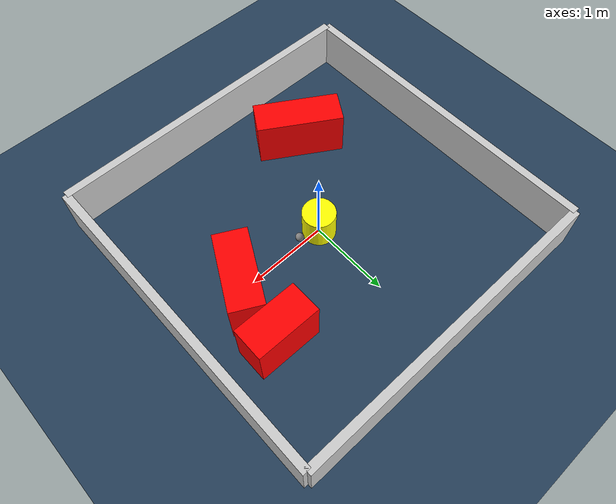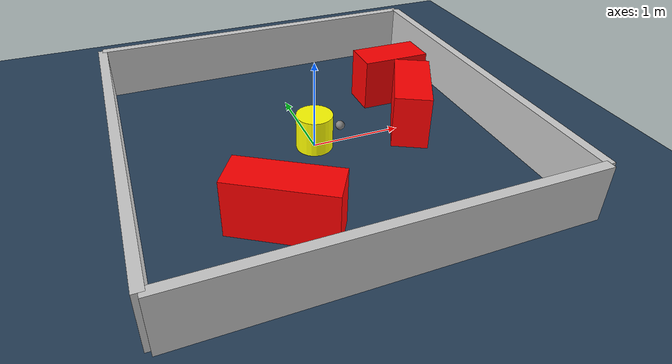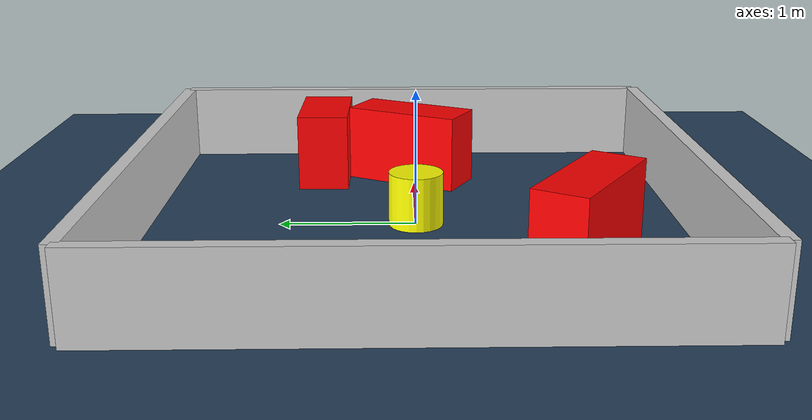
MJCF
<?xml version="1.0" ?>
<mujoco model="generated_environment">
  <option timestep="0.01" integrator="RK4" cone="elliptic"/>
  <default>
    <geom density="1"/>
  </default>
  <asset>
    <texture builtin="gradient" height="3072" rgb1="0.3 0.5 0.7" rgb2="0 0 0" type="skybox" width="512"/>
    <texture builtin="checker" height="300" mark="edge" markrgb="0.8 0.8 0.8" name="groundplane" rgb1="0.2 0.3 0.4" rgb2="0.1 0.2 0.3" type="2d" width="300"/>
    <material name="groundplane" reflectance="0.2" texrepeat="5 5" texture="groundplane" texuniform="true"/>
    <material name="robot" rgba="0.0 1.0 0.0 1"/>
  </asset>
  <worldbody>
    <light dir="0 0 -1" directional="true" pos="0 0 1.5"/>
    <geom condim="4" friction="1.0 0.005 0.001" material="groundplane" name="floor" size="0 0 0.05" type="plane"/>
    <body name="walls">
      <geom name="wall_1" condim="4" pos="-2.0 0.0 0.3" rgba="0.800000011920929 0.800000011920929 0.800000011920929 1.0" size="0.05 2.0 0.3" type="box"/>
      <geom name="wall_2" condim="4" pos="2.0 0.0 0.3" rgba="0.800000011920929 0.800000011920929 0.800000011920929 1.0" size="0.05 2.0 0.3" type="box"/>
      <geom name="wall_3" condim="4" pos="0.0 -2.0 0.3" rgba="0.800000011920929 0.800000011920929 0.800000011920929 1.0" size="2.0 0.05 0.3" type="box"/>
      <geom name="wall_4" condim="4" pos="0.0 2.0 0.3" rgba="0.800000011920929 0.800000011920929 0.800000011920929 1.0" size="2.0 0.05 0.3" type="box"/>
    </body>
    <body name="robot">
      <joint name="joint_x" type="slide" pos="0 0 0" axis="1 0 0"/>
      <joint name="joint_y" type="slide" pos="0 0 0" axis="0 1 0"/>
      <geom name="robot" type="sphere" pos="0.3 0.0 0.2" size="0.05" mass="5." friction="1.0 0.005 0.0001" condim="4" rgba="0.5 0.5 0.5 1.0"/>
      <site name="sensor_ball"/>
    </body>
    <body name="obstacle_movable_1">
      <geom name="obstacle_movable_1" condim="4" pos="0.0 0.0 0.2" euler="0 0 0.0" friction="1.0 0.005 0.001" rgba="1.0 1.0 0.0 1.0" size="0.2 0.2 0.0" type="cylinder" mass="0.1"/>
      <joint type="free"/>
    </body>
    <body name="obstacle_2_static">
      <geom name="obstacle_2_static" condim="4" pos="1.2549842598377017 0.7342541668152454 0.3" euler="0 0 359.45966647683616" friction="1.0 0.005 0.001" rgba="1 0 0 1" size="0.39113458024262493 0.2 0.3" type="box"/>
    </body>
    <body name="obstacle_3_static">
      <geom name="obstacle_3_static" condim="4" pos="1.1762113424144047 0.02315585803657494 0.3" euler="0 0 62.18720158940337" friction="1.0 0.005 0.001" rgba="1 0 0 1" size="0.4723295829806383 0.2 0.3" type="box"/>
    </body>
    <body name="obstacle_4_static">
      <geom name="obstacle_4_static" condim="4" pos="-0.7100637895027097 -1.1415713749840788 0.3" euler="0 0 328.13875704342547" friction="1.0 0.005 0.001" rgba="1 0 0 1" size="0.5255852172141475 0.2 0.3" type="box"/>
    </body>
  </worldbody>
  <actuator>
    <motor name="actuator_x" joint="joint_x" gear="1" ctrlrange="-1 1"/>
    <motor name="actuator_y" joint="joint_y" gear="1" ctrlrange="-1 1"/>
  </actuator>
</mujoco>
